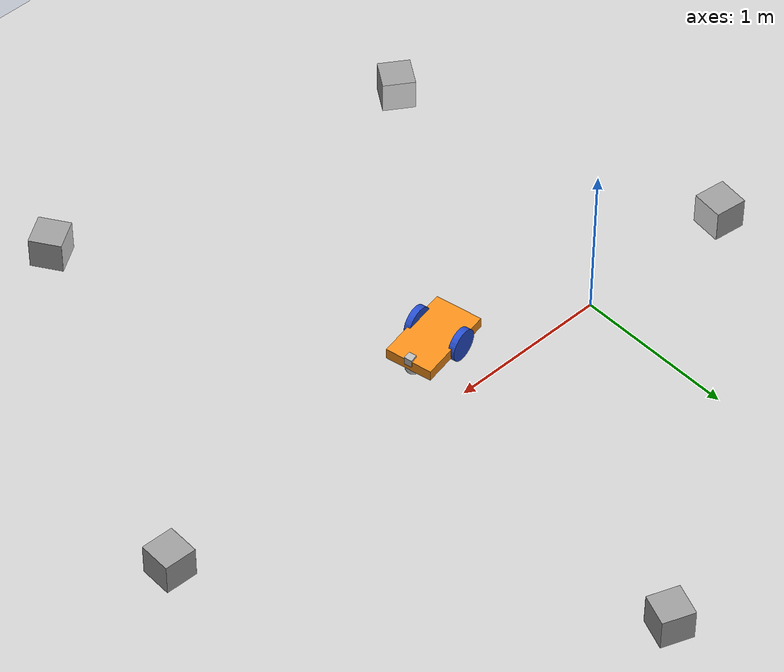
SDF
<sdf version="1.7">
 <world name="default">
  <light name="sun" type="directional">
   <pose>0 0 10 0 -0 0</pose>
   <diffuse>0.8 0.8 0.8 1</diffuse>
   <specular>0.2 0.2 0.2 1</specular>
   <attenuation>
    <range>1000</range>
    <constant>0.9</constant>
    <linear>0.01</linear>
    <quadratic>0.001</quadratic>
   </attenuation>
   <direction>-0.5 0.1 -0.9</direction>
   <spot><inner_angle>0</inner_angle><outer_angle>0</outer_angle><falloff>0</falloff></spot>
  </light>
  <model name="ground_plane">
   <static>1</static>
   <link name="link">
    <collision name="collision">
     <geometry><plane><normal>0 0 1</normal><size>100 100</size></plane></geometry>
     <surface>
      <contact><collide_bitmask>65535</collide_bitmask></contact>
      <friction><ode><mu>100</mu><mu2>50</mu2></ode></friction>
     </surface>
    </collision>
    <visual name="visual">
     <cast_shadows>0</cast_shadows>
     <geometry><plane><normal>0 0 1</normal><size>100 100</size></plane></geometry>
     <material>
      <script><uri>file://media/materials/scripts/gazebo.material</uri><name>Gazebo/Grey</name></script>
     </material>
    </visual>
   </link>
  </model>
  <gravity>0 0 -9.8</gravity>
  <magnetic_field>6e-06 2.3e-05 -4.2e-05</magnetic_field>
  <atmosphere type="adiabatic"/>
  <physics type="ode">
   <max_step_size>0.001</max_step_size>
   <real_time_factor>1</real_time_factor>
   <real_time_update_rate>1000</real_time_update_rate>
  </physics>
  <scene><ambient>0.4 0.4 0.4 1</ambient><background>0.7 0.7 0.7 1</background><shadows>1</shadows></scene>
  <spherical_coordinates>
   <surface_model>EARTH_WGS84</surface_model>
   <latitude_deg>0</latitude_deg>
   <longitude_deg>0</longitude_deg>
   <elevation>0</elevation>
   <heading_deg>0</heading_deg>
  </spherical_coordinates>
  <model name="marker11_box">
   <link name="marker">
    <inertial>
     <mass>0.1</mass>
     <inertia><ixx>0</ixx><ixy>0</ixy><ixz>0</ixz><iyy>0</iyy><iyz>0</iyz><izz>0</izz></inertia>
    </inertial>
    <self_collide>1</self_collide>
    <pose>-0.76428 -0.101106 0.120004 -0.015494 1.56996 -0.015507</pose>
    <visual name="visual">
     <geometry><box><size>0.2 0.2 0.001</size></box></geometry>
     <material>
      <script>
       <uri>model://marker11/material/scripts</uri>
       <uri>model://marker11/material/textures</uri>
       <name>Aruco/marker11</name>
      </script>
      <shader type="pixel"><normal_map>__default__</normal_map></shader>
      <emissive>0 0 0 1</emissive>
      <ambient>1 1 1 1</ambient>
      <diffuse>1 1 1 1</diffuse>
      <specular>0 0 0 1</specular>
     </material>
    </visual>
    <collision name="collision">
     <geometry><box><size>0.2 0.2 0.02</size></box></geometry>
     <surface>
      <friction>
       <ode><mu>1</mu><mu2>1</mu2><fdir1>0 0 0</fdir1><slip1>0</slip1><slip2>0</slip2></ode>
       <torsional>
        <coefficient>1</coefficient>
        <patch_radius>0</patch_radius>
        <surface_radius>0</surface_radius>
        <use_patch_radius>1</use_patch_radius>
        <ode><slip>0</slip></ode>
       </torsional>
      </friction>
      <bounce><restitution_coefficient>0</restitution_coefficient><threshold>1e+06</threshold></bounce>
      <contact>
       <collide_without_contact>0</collide_without_contact>
       <collide_without_contact_bitmask>1</collide_without_contact_bitmask>
       <collide_bitmask>1</collide_bitmask>
       <ode>
        <soft_cfm>0</soft_cfm>
        <soft_erp>0.2</soft_erp>
        <kp>1e+13</kp>
        <kd>1</kd>
        <max_vel>0.01</max_vel>
        <min_depth>0</min_depth>
       </ode>
       <bullet>
        <split_impulse>1</split_impulse>
        <split_impulse_penetration_threshold>-0.01</split_impulse_penetration_threshold>
        <soft_cfm>0</soft_cfm>
        <soft_erp>0.2</soft_erp>
        <kp>1e+13</kp>
        <kd>1</kd>
       </bullet>
      </contact>
     </surface>
    </collision>
   </link>
   <link name="link_1">
    <inertial>
     <mass>1</mass>
     <inertia>
      <ixx>0.166667</ixx>
      <ixy>0</ixy>
      <ixz>0</ixz>
      <iyy>0.166667</iyy>
      <iyz>0</iyz>
      <izz>0.166667</izz>
     </inertia>
    </inertial>
    <pose>-0.86428 -0.101106 0.12 -1.3e-05 -4.2e-05 0</pose>
    <visual name="visual">
     <geometry><box><size>0.2 0.2 0.2</size></box></geometry>
     <material>
      <lighting>1</lighting>
      <script><uri>file://media/materials/scripts/gazebo.material</uri><name>Gazebo/Grey</name></script>
      <shader type="pixel"><normal_map>__default__</normal_map></shader>
      <emissive>0 0 0 1</emissive>
      <ambient>0.3 0.3 0.3 1</ambient>
      <diffuse>0.7 0.7 0.7 1</diffuse>
      <specular>0.01 0.01 0.01 1</specular>
     </material>
    </visual>
    <collision name="collision">
     <geometry><box><size>0.2 0.2 0.2</size></box></geometry>
     <surface>
      <friction>
       <ode><mu>1</mu><mu2>1</mu2><fdir1>0 0 0</fdir1><slip1>0</slip1><slip2>0</slip2></ode>
       <torsional>
        <coefficient>1</coefficient>
        <patch_radius>0</patch_radius>
        <surface_radius>0</surface_radius>
        <use_patch_radius>1</use_patch_radius>
        <ode><slip>0</slip></ode>
       </torsional>
      </friction>
      <bounce><restitution_coefficient>0</restitution_coefficient><threshold>1e+06</threshold></bounce>
      <contact>
       <collide_without_contact>0</collide_without_contact>
       <collide_without_contact_bitmask>1</collide_without_contact_bitmask>
       <collide_bitmask>1</collide_bitmask>
       <ode>
        <soft_cfm>0</soft_cfm>
        <soft_erp>0.2</soft_erp>
        <kp>1e+13</kp>
        <kd>1</kd>
        <max_vel>0.01</max_vel>
        <min_depth>0</min_depth>
       </ode>
       <bullet>
        <split_impulse>1</split_impulse>
        <split_impulse_penetration_threshold>-0.01</split_impulse_penetration_threshold>
        <soft_cfm>0</soft_cfm>
        <soft_erp>0.2</soft_erp>
        <kp>1e+13</kp>
        <kd>1</kd>
       </bullet>
      </contact>
     </surface>
    </collision>
   </link>
   <joint name="link_1_JOINT_3" type="fixed">
    <parent>link_1</parent>
    <child>marker</child>
    <physics>
     <ode><limit><cfm>0</cfm><erp>0.2</erp></limit><suspension><cfm>0</cfm><erp>0.2</erp></suspension></ode>
    </physics>
   </joint>
   <static>0</static>
   <pose>2.17218 -0.210605 -0.020008 1.9e-05 1.8e-05 3.11153</pose>
  </model>
  <model name="marker12_box">
   <link name="marker">
    <inertial>
     <mass>0.1</mass>
     <inertia><ixx>0</ixx><ixy>0</ixy><ixz>0</ixz><iyy>0</iyy><iyz>0</iyz><izz>0</izz></inertia>
    </inertial>
    <self_collide>1</self_collide>
    <pose>-0.76428 -0.101106 0.120004 -0.015494 1.56996 -0.015507</pose>
    <visual name="visual">
     <geometry><box><size>0.2 0.2 0.001</size></box></geometry>
     <material>
      <script>
       <uri>model://marker12/material/scripts</uri>
       <uri>model://marker12/material/textures</uri>
       <name>Aruco/marker12</name>
      </script>
      <shader type="pixel"><normal_map>__default__</normal_map></shader>
      <emissive>0 0 0 1</emissive>
      <ambient>1 1 1 1</ambient>
      <diffuse>1 1 1 1</diffuse>
      <specular>0 0 0 1</specular>
     </material>
    </visual>
    <collision name="collision">
     <geometry><box><size>0.2 0.2 0.02</size></box></geometry>
     <surface>
      <friction>
       <ode><mu>1</mu><mu2>1</mu2><fdir1>0 0 0</fdir1><slip1>0</slip1><slip2>0</slip2></ode>
       <torsional>
        <coefficient>1</coefficient>
        <patch_radius>0</patch_radius>
        <surface_radius>0</surface_radius>
        <use_patch_radius>1</use_patch_radius>
        <ode><slip>0</slip></ode>
       </torsional>
      </friction>
      <bounce><restitution_coefficient>0</restitution_coefficient><threshold>1e+06</threshold></bounce>
      <contact>
       <collide_without_contact>0</collide_without_contact>
       <collide_without_contact_bitmask>1</collide_without_contact_bitmask>
       <collide_bitmask>1</collide_bitmask>
       <ode>
        <soft_cfm>0</soft_cfm>
        <soft_erp>0.2</soft_erp>
        <kp>1e+13</kp>
        <kd>1</kd>
        <max_vel>0.01</max_vel>
        <min_depth>0</min_depth>
       </ode>
       <bullet>
        <split_impulse>1</split_impulse>
        <split_impulse_penetration_threshold>-0.01</split_impulse_penetration_threshold>
        <soft_cfm>0</soft_cfm>
        <soft_erp>0.2</soft_erp>
        <kp>1e+13</kp>
        <kd>1</kd>
       </bullet>
      </contact>
     </surface>
    </collision>
   </link>
   <link name="link_1">
    <inertial>
     <mass>1</mass>
     <inertia>
      <ixx>0.166667</ixx>
      <ixy>0</ixy>
      <ixz>0</ixz>
      <iyy>0.166667</iyy>
      <iyz>0</iyz>
      <izz>0.166667</izz>
     </inertia>
    </inertial>
    <pose>-0.86428 -0.101106 0.12 -1.3e-05 -4.2e-05 0</pose>
    <visual name="visual">
     <geometry><box><size>0.2 0.2 0.2</size></box></geometry>
     <material>
      <lighting>1</lighting>
      <script><uri>file://media/materials/scripts/gazebo.material</uri><name>Gazebo/Grey</name></script>
      <shader type="pixel"><normal_map>__default__</normal_map></shader>
      <emissive>0 0 0 1</emissive>
      <ambient>0.3 0.3 0.3 1</ambient>
      <diffuse>0.7 0.7 0.7 1</diffuse>
      <specular>0.01 0.01 0.01 1</specular>
     </material>
    </visual>
    <collision name="collision">
     <geometry><box><size>0.2 0.2 0.2</size></box></geometry>
     <surface>
      <friction>
       <ode><mu>1</mu><mu2>1</mu2><fdir1>0 0 0</fdir1><slip1>0</slip1><slip2>0</slip2></ode>
       <torsional>
        <coefficient>1</coefficient>
        <patch_radius>0</patch_radius>
        <surface_radius>0</surface_radius>
        <use_patch_radius>1</use_patch_radius>
        <ode><slip>0</slip></ode>
       </torsional>
      </friction>
      <bounce><restitution_coefficient>0</restitution_coefficient><threshold>1e+06</threshold></bounce>
      <contact>
       <collide_without_contact>0</collide_without_contact>
       <collide_without_contact_bitmask>1</collide_without_contact_bitmask>
       <collide_bitmask>1</collide_bitmask>
       <ode>
        <soft_cfm>0</soft_cfm>
        <soft_erp>0.2</soft_erp>
        <kp>1e+13</kp>
        <kd>1</kd>
        <max_vel>0.01</max_vel>
        <min_depth>0</min_depth>
       </ode>
       <bullet>
        <split_impulse>1</split_impulse>
        <split_impulse_penetration_threshold>-0.01</split_impulse_penetration_threshold>
        <soft_cfm>0</soft_cfm>
        <soft_erp>0.2</soft_erp>
        <kp>1e+13</kp>
        <kd>1</kd>
       </bullet>
      </contact>
     </surface>
    </collision>
   </link>
   <joint name="link_1_JOINT_3" type="fixed">
    <parent>link_1</parent>
    <child>marker</child>
    <physics>
     <ode><limit><cfm>0</cfm><erp>0.2</erp></limit><suspension><cfm>0</cfm><erp>0.2</erp></suspension></ode>
    </physics>
   </joint>
   <static>0</static>
   <pose>1.16389 1.09883 -0.02001 -9e-06 1.9e-05 -1.92859</pose>
  </model>
  <model name="marker13_box">
   <link name="marker">
    <inertial>
     <mass>0.1</mass>
     <inertia><ixx>0</ixx><ixy>0</ixy><ixz>0</ixz><iyy>0</iyy><iyz>0</iyz><izz>0</izz></inertia>
    </inertial>
    <self_collide>1</self_collide>
    <pose>-0.76428 -0.101106 0.120004 -0.015494 1.56996 -0.015507</pose>
    <visual name="visual">
     <geometry><box><size>0.2 0.2 0.001</size></box></geometry>
     <material>
      <script>
       <uri>model://marker13/material/scripts</uri>
       <uri>model://marker13/material/textures</uri>
       <name>Aruco/marker13</name>
      </script>
      <shader type="pixel"><normal_map>__default__</normal_map></shader>
      <emissive>0 0 0 1</emissive>
      <ambient>1 1 1 1</ambient>
      <diffuse>1 1 1 1</diffuse>
      <specular>0 0 0 1</specular>
     </material>
    </visual>
    <collision name="collision">
     <geometry><box><size>0.2 0.2 0.02</size></box></geometry>
     <surface>
      <friction>
       <ode><mu>1</mu><mu2>1</mu2><fdir1>0 0 0</fdir1><slip1>0</slip1><slip2>0</slip2></ode>
       <torsional>
        <coefficient>1</coefficient>
        <patch_radius>0</patch_radius>
        <surface_radius>0</surface_radius>
        <use_patch_radius>1</use_patch_radius>
        <ode><slip>0</slip></ode>
       </torsional>
      </friction>
      <bounce><restitution_coefficient>0</restitution_coefficient><threshold>1e+06</threshold></bounce>
      <contact>
       <collide_without_contact>0</collide_without_contact>
       <collide_without_contact_bitmask>1</collide_without_contact_bitmask>
       <collide_bitmask>1</collide_bitmask>
       <ode>
        <soft_cfm>0</soft_cfm>
        <soft_erp>0.2</soft_erp>
        <kp>1e+13</kp>
        <kd>1</kd>
        <max_vel>0.01</max_vel>
        <min_depth>0</min_depth>
       </ode>
       <bullet>
        <split_impulse>1</split_impulse>
        <split_impulse_penetration_threshold>-0.01</split_impulse_penetration_threshold>
        <soft_cfm>0</soft_cfm>
        <soft_erp>0.2</soft_erp>
        <kp>1e+13</kp>
        <kd>1</kd>
       </bullet>
      </contact>
     </surface>
    </collision>
   </link>
   <link name="link_1">
    <inertial>
     <mass>1</mass>
     <inertia>
      <ixx>0.166667</ixx>
      <ixy>0</ixy>
      <ixz>0</ixz>
      <iyy>0.166667</iyy>
      <iyz>0</iyz>
      <izz>0.166667</izz>
     </inertia>
    </inertial>
    <pose>-0.86428 -0.101106 0.12 -1.3e-05 -4.2e-05 0</pose>
    <visual name="visual">
     <geometry><box><size>0.2 0.2 0.2</size></box></geometry>
     <material>
      <lighting>1</lighting>
      <script><uri>file://media/materials/scripts/gazebo.material</uri><name>Gazebo/Grey</name></script>
      <shader type="pixel"><normal_map>__default__</normal_map></shader>
      <emissive>0 0 0 1</emissive>
      <ambient>0.3 0.3 0.3 1</ambient>
      <diffuse>0.7 0.7 0.7 1</diffuse>
      <specular>0.01 0.01 0.01 1</specular>
     </material>
    </visual>
    <collision name="collision">
     <geometry><box><size>0.2 0.2 0.2</size></box></geometry>
     <surface>
      <friction>
       <ode><mu>1</mu><mu2>1</mu2><fdir1>0 0 0</fdir1><slip1>0</slip1><slip2>0</slip2></ode>
       <torsional>
        <coefficient>1</coefficient>
        <patch_radius>0</patch_radius>
        <surface_radius>0</surface_radius>
        <use_patch_radius>1</use_patch_radius>
        <ode><slip>0</slip></ode>
       </torsional>
      </friction>
      <bounce><restitution_coefficient>0</restitution_coefficient><threshold>1e+06</threshold></bounce>
      <contact>
       <collide_without_contact>0</collide_without_contact>
       <collide_without_contact_bitmask>1</collide_without_contact_bitmask>
       <collide_bitmask>1</collide_bitmask>
       <ode>
        <soft_cfm>0</soft_cfm>
        <soft_erp>0.2</soft_erp>
        <kp>1e+13</kp>
        <kd>1</kd>
        <max_vel>0.01</max_vel>
        <min_depth>0</min_depth>
       </ode>
       <bullet>
        <split_impulse>1</split_impulse>
        <split_impulse_penetration_threshold>-0.01</split_impulse_penetration_threshold>
        <soft_cfm>0</soft_cfm>
        <soft_erp>0.2</soft_erp>
        <kp>1e+13</kp>
        <kd>1</kd>
       </bullet>
      </contact>
     </surface>
    </collision>
   </link>
   <joint name="link_1_JOINT_3" type="fixed">
    <parent>link_1</parent>
    <child>marker</child>
    <physics>
     <ode><limit><cfm>0</cfm><erp>0.2</erp></limit><suspension><cfm>0</cfm><erp>0.2</erp></suspension></ode>
    </physics>
   </joint>
   <static>0</static>
   <pose>-0.138475 0.039098 -0.020008 1.9e-05 1.8e-05 -0.114277</pose>
  </model>
  <model name="marker14_box">
   <link name="marker">
    <inertial>
     <mass>0.1</mass>
     <inertia><ixx>0</ixx><ixy>0</ixy><ixz>0</ixz><iyy>0</iyy><iyz>0</iyz><izz>0</izz></inertia>
    </inertial>
    <self_collide>1</self_collide>
    <pose>-0.76428 -0.101106 0.120004 -0.015494 1.56996 -0.015507</pose>
    <visual name="visual">
     <geometry><box><size>0.2 0.2 0.001</size></box></geometry>
     <material>
      <script>
       <uri>model://marker14/material/scripts</uri>
       <uri>model://marker14/material/textures</uri>
       <name>Aruco/marker14</name>
      </script>
      <shader type="pixel"><normal_map>__default__</normal_map></shader>
      <emissive>0 0 0 1</emissive>
      <ambient>1 1 1 1</ambient>
      <diffuse>1 1 1 1</diffuse>
      <specular>0 0 0 1</specular>
     </material>
    </visual>
    <collision name="collision">
     <geometry><box><size>0.2 0.2 0.02</size></box></geometry>
     <surface>
      <friction>
       <ode><mu>1</mu><mu2>1</mu2><fdir1>0 0 0</fdir1><slip1>0</slip1><slip2>0</slip2></ode>
       <torsional>
        <coefficient>1</coefficient>
        <patch_radius>0</patch_radius>
        <surface_radius>0</surface_radius>
        <use_patch_radius>1</use_patch_radius>
        <ode><slip>0</slip></ode>
       </torsional>
      </friction>
      <bounce><restitution_coefficient>0</restitution_coefficient><threshold>1e+06</threshold></bounce>
      <contact>
       <collide_without_contact>0</collide_without_contact>
       <collide_without_contact_bitmask>1</collide_without_contact_bitmask>
       <collide_bitmask>1</collide_bitmask>
       <ode>
        <soft_cfm>0</soft_cfm>
        <soft_erp>0.2</soft_erp>
        <kp>1e+13</kp>
        <kd>1</kd>
        <max_vel>0.01</max_vel>
        <min_depth>0</min_depth>
       </ode>
       <bullet>
        <split_impulse>1</split_impulse>
        <split_impulse_penetration_threshold>-0.01</split_impulse_penetration_threshold>
        <soft_cfm>0</soft_cfm>
        <soft_erp>0.2</soft_erp>
        <kp>1e+13</kp>
        <kd>1</kd>
       </bullet>
      </contact>
     </surface>
    </collision>
   </link>
   <link name="link_1">
    <inertial>
     <mass>1</mass>
     <inertia>
      <ixx>0.166667</ixx>
      <ixy>0</ixy>
      <ixz>0</ixz>
      <iyy>0.166667</iyy>
      <iyz>0</iyz>
      <izz>0.166667</izz>
     </inertia>
    </inertial>
    <pose>-0.86428 -0.101106 0.12 -1.3e-05 -4.2e-05 0</pose>
    <visual name="visual">
     <geometry><box><size>0.2 0.2 0.2</size></box></geometry>
     <material>
      <lighting>1</lighting>
      <script><uri>file://media/materials/scripts/gazebo.material</uri><name>Gazebo/Grey</name></script>
      <shader type="pixel"><normal_map>__default__</normal_map></shader>
      <emissive>0 0 0 1</emissive>
      <ambient>0.3 0.3 0.3 1</ambient>
      <diffuse>0.7 0.7 0.7 1</diffuse>
      <specular>0.01 0.01 0.01 1</specular>
     </material>
    </visual>
    <collision name="collision">
     <geometry><box><size>0.2 0.2 0.2</size></box></geometry>
     <surface>
      <friction>
       <ode><mu>1</mu><mu2>1</mu2><fdir1>0 0 0</fdir1><slip1>0</slip1><slip2>0</slip2></ode>
       <torsional>
        <coefficient>1</coefficient>
        <patch_radius>0</patch_radius>
        <surface_radius>0</surface_radius>
        <use_patch_radius>1</use_patch_radius>
        <ode><slip>0</slip></ode>
       </torsional>
      </friction>
      <bounce><restitution_coefficient>0</restitution_coefficient><threshold>1e+06</threshold></bounce>
      <contact>
       <collide_without_contact>0</collide_without_contact>
       <collide_without_contact_bitmask>1</collide_without_contact_bitmask>
       <collide_bitmask>1</collide_bitmask>
       <ode>
        <soft_cfm>0</soft_cfm>
        <soft_erp>0.2</soft_erp>
        <kp>1e+13</kp>
        <kd>1</kd>
        <max_vel>0.01</max_vel>
        <min_depth>0</min_depth>
       </ode>
       <bullet>
        <split_impulse>1</split_impulse>
        <split_impulse_penetration_threshold>-0.01</split_impulse_penetration_threshold>
        <soft_cfm>0</soft_cfm>
        <soft_erp>0.2</soft_erp>
        <kp>1e+13</kp>
        <kd>1</kd>
       </bullet>
      </contact>
     </surface>
    </collision>
   </link>
   <joint name="link_1_JOINT_3" type="fixed">
    <parent>link_1</parent>
    <child>marker</child>
    <physics>
     <ode><limit><cfm>0</cfm><erp>0.2</erp></limit><suspension><cfm>0</cfm><erp>0.2</erp></suspension></ode>
    </physics>
   </joint>
   <static>0</static>
   <pose>0.019237 -1.23186 -0.020009 1.1e-05 1.8e-05 0.992318</pose>
  </model>
  <model name="marker15_box">
   <link name="marker">
    <inertial>
     <mass>0.1</mass>
     <inertia><ixx>0</ixx><ixy>0</ixy><ixz>0</ixz><iyy>0</iyy><iyz>0</iyz><izz>0</izz></inertia>
    </inertial>
    <self_collide>1</self_collide>
    <pose>-0.76428 -0.101106 0.120004 -0.015494 1.56996 -0.015507</pose>
    <visual name="visual">
     <geometry><box><size>0.2 0.2 0.001</size></box></geometry>
     <material>
      <script>
       <uri>model://marker15/material/scripts</uri>
       <uri>model://marker15/material/textures</uri>
       <name>Aruco/marker15</name>
      </script>
      <shader type="pixel"><normal_map>__default__</normal_map></shader>
      <emissive>0 0 0 1</emissive>
      <ambient>1 1 1 1</ambient>
      <diffuse>1 1 1 1</diffuse>
      <specular>0 0 0 1</specular>
     </material>
    </visual>
    <collision name="collision">
     <geometry><box><size>0.2 0.2 0.02</size></box></geometry>
     <surface>
      <friction>
       <ode><mu>1</mu><mu2>1</mu2><fdir1>0 0 0</fdir1><slip1>0</slip1><slip2>0</slip2></ode>
       <torsional>
        <coefficient>1</coefficient>
        <patch_radius>0</patch_radius>
        <surface_radius>0</surface_radius>
        <use_patch_radius>1</use_patch_radius>
        <ode><slip>0</slip></ode>
       </torsional>
      </friction>
      <bounce><restitution_coefficient>0</restitution_coefficient><threshold>1e+06</threshold></bounce>
      <contact>
       <collide_without_contact>0</collide_without_contact>
       <collide_without_contact_bitmask>1</collide_without_contact_bitmask>
       <collide_bitmask>1</collide_bitmask>
       <ode>
        <soft_cfm>0</soft_cfm>
        <soft_erp>0.2</soft_erp>
        <kp>1e+13</kp>
        <kd>1</kd>
        <max_vel>0.01</max_vel>
        <min_depth>0</min_depth>
       </ode>
       <bullet>
        <split_impulse>1</split_impulse>
        <split_impulse_penetration_threshold>-0.01</split_impulse_penetration_threshold>
        <soft_cfm>0</soft_cfm>
        <soft_erp>0.2</soft_erp>
        <kp>1e+13</kp>
        <kd>1</kd>
       </bullet>
      </contact>
     </surface>
    </collision>
   </link>
   <link name="link_1">
    <inertial>
     <mass>1</mass>
     <inertia>
      <ixx>0.166667</ixx>
      <ixy>0</ixy>
      <ixz>0</ixz>
      <iyy>0.166667</iyy>
      <iyz>0</iyz>
      <izz>0.166667</izz>
     </inertia>
    </inertial>
    <pose>-0.86428 -0.101106 0.12 -1.3e-05 -4.2e-05 0</pose>
    <visual name="visual">
     <geometry><box><size>0.2 0.2 0.2</size></box></geometry>
     <material>
      <lighting>1</lighting>
      <script><uri>file://media/materials/scripts/gazebo.material</uri><name>Gazebo/Grey</name></script>
      <shader type="pixel"><normal_map>__default__</normal_map></shader>
      <emissive>0 0 0 1</emissive>
      <ambient>0.3 0.3 0.3 1</ambient>
      <diffuse>0.7 0.7 0.7 1</diffuse>
      <specular>0.01 0.01 0.01 1</specular>
     </material>
    </visual>
    <collision name="collision">
     <geometry><box><size>0.2 0.2 0.2</size></box></geometry>
     <surface>
      <friction>
       <ode><mu>1</mu><mu2>1</mu2><fdir1>0 0 0</fdir1><slip1>0</slip1><slip2>0</slip2></ode>
       <torsional>
        <coefficient>1</coefficient>
        <patch_radius>0</patch_radius>
        <surface_radius>0</surface_radius>
        <use_patch_radius>1</use_patch_radius>
        <ode><slip>0</slip></ode>
       </torsional>
      </friction>
      <bounce><restitution_coefficient>0</restitution_coefficient><threshold>1e+06</threshold></bounce>
      <contact>
       <collide_without_contact>0</collide_without_contact>
       <collide_without_contact_bitmask>1</collide_without_contact_bitmask>
       <collide_bitmask>1</collide_bitmask>
       <ode>
        <soft_cfm>0</soft_cfm>
        <soft_erp>0.2</soft_erp>
        <kp>1e+13</kp>
        <kd>1</kd>
        <max_vel>0.01</max_vel>
        <min_depth>0</min_depth>
       </ode>
       <bullet>
        <split_impulse>1</split_impulse>
        <split_impulse_penetration_threshold>-0.01</split_impulse_penetration_threshold>
        <soft_cfm>0</soft_cfm>
        <soft_erp>0.2</soft_erp>
        <kp>1e+13</kp>
        <kd>1</kd>
       </bullet>
      </contact>
     </surface>
    </collision>
   </link>
   <joint name="link_1_JOINT_3" type="fixed">
    <parent>link_1</parent>
    <child>marker</child>
    <physics>
     <ode><limit><cfm>0</cfm><erp>0.2</erp></limit><suspension><cfm>0</cfm><erp>0.2</erp></suspension></ode>
    </physics>
   </joint>
   <static>0</static>
   <pose>1.43761 -1.71773 -0.020009 1.2e-05 1.9e-05 2.14563</pose>
  </model>
  <model name="my_test_robot">
   <link name="link_chassis">
    <inertial>
     <pose>0 0 0.1 0 -0 0</pose>
     <mass>5</mass>
     <inertia>
      <ixx>0.0395417</ixx>
      <ixy>0</ixy>
      <ixz>0</ixz>
      <iyy>0.106208</iyy>
      <iyz>0</iyz>
      <izz>0.106208</izz>
     </inertia>
    </inertial>
    <collision name="link_chassis_fixed_joint_lump__collision_chassis_collision">
     <geometry><box><size>0.5 0.3 0.07</size></box></geometry>
    </collision>
    <collision name="link_chassis_fixed_joint_lump__caster_front_collision_collision_1">
     <pose>0.35 0 -0.05 0 -0 0</pose>
     <geometry><sphere><radius>0.05</radius></sphere></geometry>
    </collision>
    <visual name="link_chassis_visual">
     <geometry><box><size>0.5 0.3 0.07</size></box></geometry>
     <material>
      <script><name>Gazebo/Orange</name><uri>file://media/materials/scripts/gazebo.material</uri></script>
     </material>
    </visual>
    <visual name="link_chassis_fixed_joint_lump__caster_front_visual_visual_1">
     <pose>0.2 0 -0.05 0 -0 0</pose>
     <geometry><sphere><radius>0.05</radius></sphere></geometry>
    </visual>
   </link>
   <joint name="camera_joint" type="revolute">
    <pose relative_to="link_chassis">0.23 0 0 0 -0 0</pose>
    <parent>link_chassis</parent>
    <child>camera_link</child>
    <axis>
     <xyz>0 1 0</xyz>
     <limit><effort>10000</effort><velocity>1000</velocity><lower>-1e+16</lower><upper>1e+16</upper></limit>
     <dynamics><spring_reference>0</spring_reference><spring_stiffness>0</spring_stiffness></dynamics>
    </axis>
   </joint>
   <link name="camera_link">
    <pose relative_to="camera_joint">0 0 0 0 -0 0</pose>
    <inertial>
     <mass>1e-05</mass>
     <inertia><ixx>1e-06</ixx><ixy>0</ixy><ixz>0</ixz><iyy>1e-06</iyy><iyz>0</iyz><izz>1e-06</izz></inertia>
    </inertial>
    <collision name="camera_link_collision">
     <pose>0 0 0.025 0 -0 0</pose>
     <geometry><box><size>0.05 0.05 0.05</size></box></geometry>
    </collision>
    <visual name="camera_link_visual">
     <pose>0 0 0.025 0 -0 0</pose>
     <geometry><box><size>0.05 0.05 0.05</size></box></geometry>
    </visual>
    <sensor name="camera" type="camera">
     <always_on>1</always_on>
     <update_rate>15</update_rate>
     <camera name="camera">
      <horizontal_fov>1.46608</horizontal_fov>
      <image><width>640</width><height>480</height><format>R8G8B8</format></image>
      <distortion><k1>0</k1><k2>0</k2><k3>0</k3><p1>0</p1><p2>0</p2><center>0.5 0.5</center></distortion>
      <clip><near>0.1</near><far>100</far></clip>
     </camera>
     <plugin name="plugin_name" filename="libgazebo_ros_camera.so">
      <ros><remapping>~/image_raw:=image_raw</remapping><remapping>~/camera_info:=camera_info</remapping></ros>
      <camera_name>camera</camera_name>
      <frame_name>camera_link</frame_name>
     </plugin>
    </sensor>
   </link>
   <joint name="joint_left_wheel" type="revolute">
    <pose relative_to="link_chassis">-0.05 -0.15 0 0 -0 0</pose>
    <parent>link_chassis</parent>
    <child>link_left_wheel</child>
    <axis>
     <xyz>0 1 0</xyz>
     <limit><effort>10000</effort><velocity>1000</velocity><lower>-1e+16</lower><upper>1e+16</upper></limit>
     <dynamics><spring_reference>0</spring_reference><spring_stiffness>0</spring_stiffness></dynamics>
    </axis>
   </joint>
   <link name="link_left_wheel">
    <pose relative_to="joint_left_wheel">0 0 0 0 -0 0</pose>
    <inertial>
     <pose>0 0 0 -0 1.5707 1.5707</pose>
     <mass>0.2</mass>
     <inertia>
      <ixx>0.000526667</ixx>
      <ixy>0</ixy>
      <ixz>0</ixz>
      <iyy>0.000526667</iyy>
      <iyz>0</iyz>
      <izz>0.001</izz>
     </inertia>
    </inertial>
    <collision name="link_left_wheel_collision_collision">
     <pose>0 0 0 1.57089 1.57079 -3.14159</pose>
     <geometry><cylinder><length>0.04</length><radius>0.1</radius></cylinder></geometry>
    </collision>
    <visual name="link_left_wheel_visual_visual">
     <pose>0 0 0 1.57089 1.57079 -3.14159</pose>
     <geometry><cylinder><length>0.04</length><radius>0.1</radius></cylinder></geometry>
     <material>
      <script><name>Gazebo/Blue</name><uri>file://media/materials/scripts/gazebo.material</uri></script>
     </material>
    </visual>
   </link>
   <joint name="joint_right_wheel" type="revolute">
    <pose relative_to="link_chassis">-0.05 0.15 0 0 -0 0</pose>
    <parent>link_chassis</parent>
    <child>link_right_wheel</child>
    <axis>
     <xyz>0 1 0</xyz>
     <limit><effort>10000</effort><velocity>1000</velocity><lower>-1e+16</lower><upper>1e+16</upper></limit>
     <dynamics><spring_reference>0</spring_reference><spring_stiffness>0</spring_stiffness></dynamics>
    </axis>
   </joint>
   <link name="link_right_wheel">
    <pose relative_to="joint_right_wheel">0 0 0 0 -0 0</pose>
    <inertial>
     <pose>0 0 0 -0 1.5707 1.5707</pose>
     <mass>0.2</mass>
     <inertia>
      <ixx>0.000526667</ixx>
      <ixy>0</ixy>
      <ixz>0</ixz>
      <iyy>0.000526667</iyy>
      <iyz>0</iyz>
      <izz>0.001</izz>
     </inertia>
    </inertial>
    <collision name="link_right_wheel_collision_collision">
     <pose>0 0 0 1.57089 1.57079 -3.14159</pose>
     <geometry><cylinder><length>0.04</length><radius>0.1</radius></cylinder></geometry>
    </collision>
    <visual name="link_right_wheel_visual_visual">
     <pose>0 0 0 1.57089 1.57079 -3.14159</pose>
     <geometry><cylinder><length>0.04</length><radius>0.1</radius></cylinder></geometry>
     <material>
      <script><name>Gazebo/Blue</name><uri>file://media/materials/scripts/gazebo.material</uri></script>
     </material>
    </visual>
   </link>
   <static>0</static>
   <plugin name="gazebo_ros2_control" filename="libgazebo_ros2_control.so">
    <parameters>/root/ros2_ws_diki_new/install/robot_urdf/share/robot_urdf/config/config_camera.yaml</parameters>
   </plugin>
   <plugin name="wheel_drive_controller" filename="libgazebo_ros_diff_drive.so">
    <num_wheel_pairs>1</num_wheel_pairs>
    <left_joint>joint_right_wheel</left_joint>
    <right_joint>joint_left_wheel</right_joint>
    <wheel_separation>0.2</wheel_separation>
    <wheel_diameter>0.2</wheel_diameter>
    <max_wheel_torque>20.0</max_wheel_torque>
    <max_wheel_acceleration>10.0</max_wheel_acceleration>
    <odometry_frame>odom</odometry_frame>
    <robot_base_frame>link_chassis</robot_base_frame>
    <ros><namespace>/</namespace><argument>/cmd_vel:=cmd_vel</argument><argument>/odom:=odom</argument></ros>
    <publish_odom>1</publish_odom>
    <publish_odom_tf>1</publish_odom_tf>
    <update_rate>100.0</update_rate>
   </plugin>
   <pose>0.897132 -0.353483 0.100004 -6e-06 2.1e-05 0.207469</pose>
  </model>
 </world>
</sdf>
